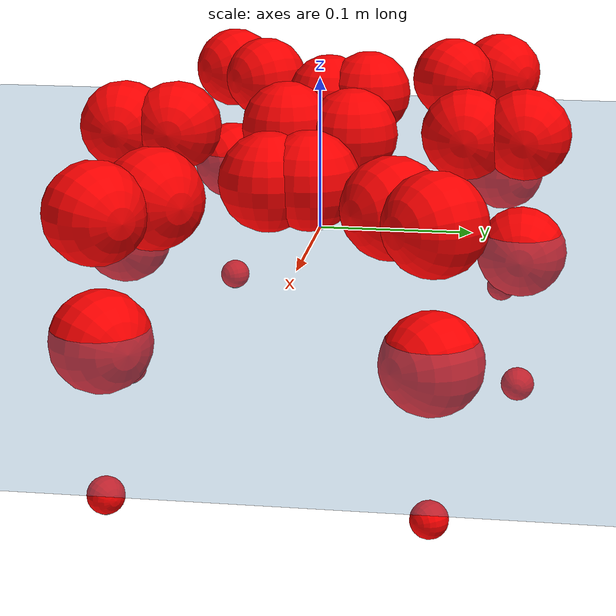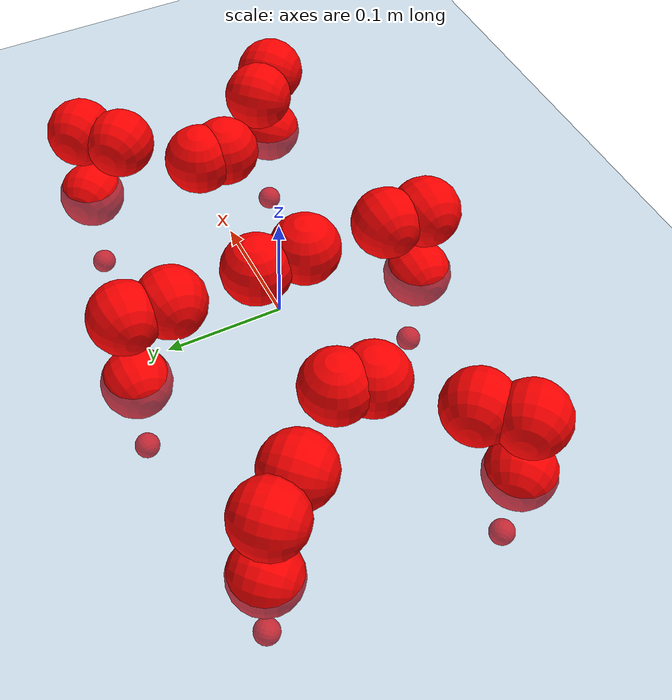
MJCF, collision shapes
<mujoco model="Golem">
  <compiler angle="radian" assetdir="assets" balanceinertia="true" inertiafromgeom="false"/>

  <option timestep="0.005" density="1.2" viscosity="2e-05"/>

  <size nkey="1"/>

  <visual>
    <quality shadowsize="8192"/>
    <map shadowclip="0.5"/>
  </visual>

  <default>
    <default class="/">
      <joint armature="0.01" damping="0.01" frictionloss="0.01"/>
      <geom contype="0" conaffinity="0" group="1" solref="-1000 -80"/>
      <site size="0.01 0.005 0.005" group="5"/>
      <general forcelimited="true" biastype="affine" gainprm="25" biasprm="0 -25 -0.5"/>
      <default class="visual">
        <geom type="mesh" group="2"/>
      </default>
      <default class="collision">
        <geom group="3"/>
      </default>
      <default class="foot">
        <geom size="0.01 0 0" condim="6" group="4" priority="1" solimp="0.015 1 0.01"/>
      </default>
      <default class="reward_collision_sphere">
        <geom group="5" rgba="1 0 0 1"/>
      </default>
    </default>
  </default>

  <asset>
    <texture type="skybox" colorspace="auto" name="//unnamed_texture_0" builtin="gradient" rgb1="0.95 0.95 0.95" rgb2="0.95 0.95 0.95" width="100" height="600"/>
    <texture type="2d" colorspace="auto" name="texplane" builtin="checker" rgb1="0.345 0.575 0.748" rgb2="0.345 0.575 0.748" markrgb="1 1 1" width="512" height="512"/>
    <material name="MatPlane" class="/" texture="texplane" texuniform="true" texrepeat="2 2" specular="0.9"/>
    <mesh name="body" class="/" file="body.stl" scale="0.001 0.001 0.001"/>
    <mesh name="coxa" class="/" file="coxa.stl" scale="0.001 0.001 0.001"/>
    <mesh name="femur" class="/" file="femur.stl" scale="0.001 0.001 0.001"/>
    <mesh name="tibia" class="/" file="tibia.stl" scale="0.001 0.001 0.001"/>
    <mesh name="tarsus" class="/" file="tarsus.stl" scale="0.001 0.001 0.001"/>
  </asset>

  <worldbody>
    <geom name="floor" class="/" size="100 100 0.125" type="plane" group="0" material="MatPlane"/>
    <light name="toplight_shadow" class="/" pos="0 0 5" dir="0.0990148 0.0990148 -0.990148" type="directional" ambient="0.04 0.04 0.04" diffuse="0.55 0.55 0.55" specular="0.12 0.12 0.12"/>
    <light name="toplight_fill" class="/" pos="0 0 5" dir="0.0990148 0.0990148 -0.990148" type="directional" castshadow="false" ambient="0.04 0.04 0.04" diffuse="0.3 0.3 0.3" specular="0.08 0.08 0.08"/>
    <body name="trunk" pos="0.0004118 -0.000355306 0.000674601" quat="1 -9.03284e-05 0.00048059 0.000147181">
      <inertial pos="0.00201934 -0.000107076 -0.00223034" quat="1 -0.000468073 -0.000410325 -0.000732773" mass="1.53124" diaginertia="0.00474201 6.22716e-05 0.00997737"/>
      <joint name="//unnamed_joint_0" type="free"/>
      <geom name="//unnamed_geom_1" class="/" pos="0 0 0.0639046" quat="1 0 0 0" type="mesh" rgba="0.9 0.9 0.9 1" mesh="body"/>
      <site name="imu" class="/" pos="0.119483 -0.0140257 0.101786" size="0.00741707"/>
      <camera name="track" class="/" pos="0 -0.73014 0" quat="0.707107 0.707107 0 0" mode="trackcom"/>
      <camera name="ego_camera" class="/" pos="0.112001 0 0.0998509" quat="-0.5 -0.5 0.5 0.5"/>
      <body name="coxa_RR" pos="-0.154067 -0.0305992 0.0598306" quat="0.382764 -0.000424171 0.000304625 -0.923846">
        <inertial pos="-0.000508567 0.000578026 0.00269223" quat="0.9999 -0.00192352 -0.00292732 -0.0137317" mass="0.0838922" diaginertia="0.00487628 6.67476e-05 0.0103183"/>
        <joint name="coxa_joint_RR" class="/" pos="0 0 0" axis="-0.000980682 -0.00388228 -0.999992" range="-3.19101 3.10142" armature="0.00752114" damping="0.00622875" frictionloss="0.00846287"/>
        <geom name="//unnamed_geom_2" class="/" type="mesh" rgba="0.2 0.2 0.2 1" mesh="coxa"/>
        <geom name="//unnamed_geom_3" class="reward_collision_sphere" size="0.0296683" pos="-0.0258463 0 0"/>
        <body name="femur_RR" pos="0.0525207 0.000600987 0.00145968" quat="0.499952 -0.499913 0.499988 0.500147">
          <inertial pos="0.000509885 4.76009e-05 -0.000412669" quat="0.999986 -0.00499599 -0.000328423 -0.00168982" mass="0.0811503" diaginertia="0.00492688 6.74427e-05 0.009805"/>
          <joint name="femur_joint_RR" class="/" pos="0 0 0" axis="0.0128624 0.002523 -0.999914" range="-3.10142 3.12468" armature="0.00657912" damping="0" frictionloss="0.00689213"/>
          <geom name="//unnamed_geom_4" class="/" type="mesh" rgba="0.9 0.9 0.9 1" mesh="femur"/>
          <geom name="//unnamed_geom_5" class="reward_collision_sphere" size="0.0296683"/>
          <body name="tibia_RR" pos="-0.00186376 -0.0381975 0.00118505" quat="-0.00133259 0.999999 0.000158829 0.000224866">
            <inertial pos="0.00265156 0.00284191 -0.000838358" quat="0.999986 0.00524383 -0.000671007 -0.000123832" mass="0.0841388" diaginertia="0.00465215 6.44474e-05 0.00963285"/>
            <joint name="tibia_joint_RR" class="/" pos="0 0 0" axis="-0.00890183 0.000782543 0.99996" stiffness="0.00429516" range="-3.10535 3.12303" armature="0.00655704" damping="0.00152224" frictionloss="0.00756614"/>
            <geom name="//unnamed_geom_6" class="/" type="mesh" rgba="0.2 0.2 0.2 1" mesh="tibia"/>
            <geom name="//unnamed_geom_7" class="reward_collision_sphere" size="0.0296683"/>
            <body name="tarsus_RR" pos="0.0736089 0.0021405 -0.00196541" quat="0.999999 -7.75582e-05 0.00096191 0.000377978">
              <inertial pos="0.0495355 0.000798971 -0.000363158" quat="0.499161 0.499509 0.499209 0.502114" mass="0.085441" diaginertia="0.00506274 6.47508e-05 0.0106332"/>
              <joint name="tarsus_joint_RR" class="/" pos="0 0 0" axis="0.0112226 0.00426299 0.999928" stiffness="0.0033316" range="-3.1899 3.14692" armature="0.00714656" damping="0.00345869" frictionloss="0.0073912"/>
              <geom name="//unnamed_geom_8" class="/" type="mesh" rgba="0.9 0.9 0.9 1" mesh="tarsus"/>
              <geom name="foot_1" class="foot" size="0.00775621" pos="0.0964929 0 0" quat="0 -0.707107 0 0.707107"/>
              <geom name="//unnamed_geom_10" class="reward_collision_sphere" size="0.0296683"/>
              <geom name="//unnamed_geom_11" class="reward_collision_sphere" size="0.0111256" pos="0.0926159 0 0"/>
              <site name="foot_1" class="foot" pos="0.0964929 0 0" quat="0 -0.707107 0 0.707107" size="0.00741707"/>
            </body>
          </body>
        </body>
      </body>
      <body name="coxa_RM" pos="-0.00257576 -0.0475146 0.0661762" quat="0.707471 -0.000841787 -1.46304e-05 -0.706742">
        <inertial pos="0.00267399 -0.00206225 0.00259091" quat="0.999986 -0.00479807 0.00221944 -0.000127826" mass="0.0782645" diaginertia="0.00458539 6.46531e-05 0.00983953"/>
        <joint name="coxa_joint_RM" class="/" pos="0 0 0" axis="-0.00381925 -0.00994213 -0.999943" range="-3.14585 3.18766" armature="0.00785179" damping="0.00529797" frictionloss="0.00638972"/>
        <geom name="//unnamed_geom_12" class="/" type="mesh" rgba="0.2 0.2 0.2 1" mesh="coxa"/>
        <geom name="//unnamed_geom_13" class="reward_collision_sphere" size="0.0296683" pos="-0.0258463 0 0"/>
        <body name="femur_RM" pos="0.0479715 -0.00136913 -0.00208627" quat="0.500003 -0.500063 0.50008 0.499855">
          <inertial pos="0.00285907 0.000557389 -0.000635227" quat="0.999995 -0.000351215 -0.000870073 0.00308849" mass="0.0869033" diaginertia="0.00481475 6.51068e-05 0.00995966"/>
          <joint name="femur_joint_RM" class="/" pos="0 0 0" axis="-0.00414001 -0.00785965 -0.999961" range="-3.19268 3.1519" armature="0.00767028" damping="0.0219915" frictionloss="0.00846352"/>
          <geom name="//unnamed_geom_14" class="/" type="mesh" rgba="0.9 0.9 0.9 1" mesh="femur"/>
          <geom name="//unnamed_geom_15" class="reward_collision_sphere" size="0.0296683"/>
          <body name="tibia_RM" pos="0.000910632 -0.0355145 -0.0016628" quat="0.0004199 1 2.89232e-05 5.20424e-05">
            <inertial pos="0.00214988 -0.00315849 -0.0021467" quat="0.999932 0.00864712 0.00242651 0.0074348" mass="0.0821153" diaginertia="0.00483424 6.36566e-05 0.010165"/>
            <joint name="tibia_joint_RM" class="/" pos="0 0 0" axis="0.000913691 0.00400167 0.999992" range="-3.14001 3.0932" armature="0.00807341" damping="0.0190819" frictionloss="0.00788674"/>
            <geom name="//unnamed_geom_16" class="/" type="mesh" rgba="0.2 0.2 0.2 1" mesh="tibia"/>
            <geom name="//unnamed_geom_17" class="reward_collision_sphere" size="0.0296683"/>
            <body name="tarsus_RM" pos="0.0774371 0.000605242 -0.00134761" quat="1 -0.000307473 0.000358052 0.000110097">
              <inertial pos="0.0548931 -0.00118327 0.000970002" quat="0.506257 0.507054 0.496237 0.490254" mass="0.0818814" diaginertia="0.00490846 6.68229e-05 0.00959106"/>
              <joint name="tarsus_joint_RM" class="/" pos="0 0 0" axis="-0.00159004 -0.000157598 0.999999" stiffness="0.00260642" range="-3.10593 3.1915" armature="0.00781665" damping="0.00999758" frictionloss="0.00707122"/>
              <geom name="//unnamed_geom_18" class="/" type="mesh" rgba="0.9 0.9 0.9 1" mesh="tarsus"/>
              <geom name="foot_2" class="foot" size="0.0079575" pos="0.0964929 0 0" quat="0 -0.707107 0 0.707107"/>
              <geom name="//unnamed_geom_20" class="reward_collision_sphere" size="0.0296683"/>
              <geom name="//unnamed_geom_21" class="reward_collision_sphere" size="0.0111256" pos="0.0926159 0 0"/>
              <site name="foot_2" class="foot" pos="0.0964929 0 0" quat="0 -0.707107 0 0.707107" size="0.00741707"/>
            </body>
          </body>
        </body>
      </body>
      <body name="coxa_RF" pos="0.151601 -0.0289227 0.0636474" quat="0.923837 7.19284e-05 -0.000185067 -0.382787">
        <inertial pos="-0.00259892 -0.000838636 0.00325033" quat="0.999904 0.00773104 0.00427801 -0.0106849" mass="0.0807942" diaginertia="0.00494384 6.54038e-05 0.00999571"/>
        <joint name="coxa_joint_RF" class="/" pos="0 0 0" axis="-0.00448601 -0.00372243 -0.999983" range="-3.18609 3.17609" armature="0.00638393" damping="0.0173426" frictionloss="0.00769816"/>
        <geom name="//unnamed_geom_22" class="/" type="mesh" rgba="0.2 0.2 0.2 1" mesh="coxa"/>
        <geom name="//unnamed_geom_23" class="reward_collision_sphere" size="0.0296683" pos="-0.0258463 0 0"/>
        <body name="femur_RF" pos="0.0517664 -0.0025096 0.00144868" quat="0.500594 -0.499211 0.500104 0.50009">
          <inertial pos="-0.000798238 -0.00281441 0.00193617" quat="0.999965 -0.00682624 0.00456253 -0.00151582" mass="0.080543" diaginertia="0.00456103 6.32956e-05 0.00984883"/>
          <joint name="femur_joint_RF" class="/" pos="0 0 0" axis="-0.00847043 0.00179658 -0.999963" range="-3.08379 3.13593" armature="0.00747354" damping="0" frictionloss="0.00668848"/>
          <geom name="//unnamed_geom_24" class="/" type="mesh" rgba="0.9 0.9 0.9 1" mesh="femur"/>
          <geom name="//unnamed_geom_25" class="reward_collision_sphere" size="0.0296683"/>
          <body name="tibia_RF" pos="0.00153509 -0.0389973 0.00269866" quat="-0.00126106 0.999999 -0.000339602 -0.000537014">
            <inertial pos="0.000823566 0.00296644 -0.00205012" quat="0.999901 -0.00345761 0.00294774 -0.0133523" mass="0.0826049" diaginertia="0.0048098 6.41177e-05 0.00974606"/>
            <joint name="tibia_joint_RF" class="/" pos="0 0 0" axis="0.00989756 -0.00375744 0.999944" stiffness="0.00650673" range="-3.147 3.13547" armature="0.00674413" damping="0.00197382" frictionloss="0.00738424"/>
            <geom name="//unnamed_geom_26" class="/" type="mesh" rgba="0.2 0.2 0.2 1" mesh="tibia"/>
            <geom name="//unnamed_geom_27" class="reward_collision_sphere" size="0.0296683"/>
            <body name="tarsus_RF" pos="0.0732111 0.000353988 -0.0025912" quat="0.999999 0.000377419 0.00019916 0.000925452">
              <inertial pos="0.0500325 0.000578504 0.00115376" quat="0.496476 0.492775 0.510975 0.499589" mass="0.0770147" diaginertia="0.0047527 6.3791e-05 0.00958246"/>
              <joint name="tarsus_joint_RF" class="/" pos="0 0 0" axis="-0.00393485 0.00786221 0.999961" range="-3.10698 3.15494" armature="0.00736838" damping="0.0119296" frictionloss="0.0084639"/>
              <geom name="//unnamed_geom_28" class="/" type="mesh" rgba="0.9 0.9 0.9 1" mesh="tarsus"/>
              <geom name="foot_3" class="foot" size="0.00774672" pos="0.0964929 0 0" quat="0 -0.707107 0 0.707107"/>
              <geom name="//unnamed_geom_30" class="reward_collision_sphere" size="0.0296683"/>
              <geom name="//unnamed_geom_31" class="reward_collision_sphere" size="0.0111256" pos="0.0926159 0 0"/>
              <site name="foot_3" class="foot" pos="0.0964929 0 0" quat="0 -0.707107 0 0.707107" size="0.00741707"/>
            </body>
          </body>
        </body>
      </body>
      <body name="coxa_LR" pos="-0.15061 0.0350138 0.0636545" quat="0.382024 0.00023338 -0.000781068 0.924152">
        <inertial pos="0.00225485 -0.00118265 -0.00268909" quat="0.999912 -0.00712286 0.0107017 -0.00317367" mass="0.0831436" diaginertia="0.00476699 6.58965e-05 0.0100877"/>
        <joint name="coxa_joint_LR" class="/" pos="0 0 0" axis="0.00200975 -0.00638052 -0.999978" range="-3.14401 3.11756" armature="0.00659504" damping="0.00514857" frictionloss="0.0074413"/>
        <geom name="//unnamed_geom_32" class="/" type="mesh" rgba="0.2 0.2 0.2 1" mesh="coxa"/>
        <geom name="//unnamed_geom_33" class="reward_collision_sphere" size="0.0296683" pos="-0.0258463 0 0"/>
        <body name="femur_LR" pos="0.0510934 -0.00313475 0.00172731" quat="0.499361 -0.499905 0.499945 0.500788">
          <inertial pos="0.00186945 0.000275932 -0.00164825" quat="1 -0.000448127 -0.00040735 0.000154511" mass="0.0830994" diaginertia="0.00480134 6.56516e-05 0.0103719"/>
          <joint name="femur_joint_LR" class="/" pos="0 0 0" axis="-0.000206106 0.00402845 0.999992" range="-3.08832 3.15796" armature="0.00794688" damping="0" frictionloss="0.00788143"/>
          <geom name="//unnamed_geom_34" class="/" type="mesh" rgba="0.9 0.9 0.9 1" mesh="femur"/>
          <geom name="//unnamed_geom_35" class="reward_collision_sphere" size="0.0296683"/>
          <body name="tibia_LR" pos="0.00021223 -0.0415618 -0.00598137" quat="0.000247846 1 -0.000146193 0.000147342">
            <inertial pos="0.00183653 -0.00346406 0.00357012" quat="0.999988 0.00315012 0.000143454 0.00364432" mass="0.0788793" diaginertia="0.00474347 6.71342e-05 0.00991739"/>
            <joint name="tibia_joint_LR" class="/" pos="0 0 0" axis="-0.000268308 -0.00466465 -0.999989" range="-3.1156 3.09512" armature="0.00680252" damping="0.0133388" frictionloss="0.00641783"/>
            <geom name="//unnamed_geom_36" class="/" type="mesh" rgba="0.2 0.2 0.2 1" mesh="tibia"/>
            <geom name="//unnamed_geom_37" class="reward_collision_sphere" size="0.0296683"/>
            <body name="tarsus_LR" pos="0.0749656 0.00484051 0.00164833" quat="1 -5.36528e-06 -9.30209e-05 0.000417108">
              <inertial pos="0.0507994 -0.00163116 -0.000146993" quat="0.500826 0.500166 0.502017 0.496977" mass="0.0824485" diaginertia="0.00477379 6.33942e-05 0.00991255"/>
              <joint name="tarsus_joint_LR" class="/" pos="0 0 0" axis="0.0065724 -0.00576138 -0.999962" range="-3.10237 3.13478" armature="0.00763787" damping="0.00757786" frictionloss="0.00721206"/>
              <geom name="//unnamed_geom_38" class="/" type="mesh" rgba="0.9 0.9 0.9 1" mesh="tarsus"/>
              <geom name="foot_4" class="foot" size="0.00682213" pos="0.0964929 0 0" quat="0.707107 0 -0.707107 0"/>
              <geom name="//unnamed_geom_40" class="reward_collision_sphere" size="0.0296683"/>
              <geom name="//unnamed_geom_41" class="reward_collision_sphere" size="0.0111256" pos="0.0926159 0 0"/>
              <site name="foot_4" class="foot" pos="0.0964929 0 0" quat="0.707107 0 -0.707107 0" size="0.00741707"/>
            </body>
          </body>
        </body>
      </body>
      <body name="coxa_LM" pos="-0.00303712 0.0471312 0.0627801" quat="0.706997 -9.94299e-05 0.000452895 0.707216">
        <inertial pos="-0.00174295 0.000178438 0.00303317" quat="0.999989 0.00170297 0.000472221 0.00425213" mass="0.080741" diaginertia="0.00487903 6.54112e-05 0.0103433"/>
        <joint name="coxa_joint_LM" class="/" pos="0 0 0" axis="-0.00422577 0.00123397 -0.99999" stiffness="0.00472349" range="-3.18962 3.13627" armature="0.00627813" damping="0.00737387" frictionloss="0.00838512"/>
        <geom name="//unnamed_geom_42" class="/" type="mesh" rgba="0.2 0.2 0.2 1" mesh="coxa"/>
        <geom name="//unnamed_geom_43" class="reward_collision_sphere" size="0.0296683" pos="-0.0258463 0 0"/>
        <body name="femur_LM" pos="0.0482364 0.00347723 0.00105262" quat="0.50039 -0.499821 0.500059 0.49973">
          <inertial pos="-0.000488461 -0.00286233 -0.000616219" quat="0.999901 -0.00195034 -0.0130867 -0.00480471" mass="0.0773601" diaginertia="0.00458518 6.32203e-05 0.00964897"/>
          <joint name="femur_joint_LM" class="/" pos="0 0 0" axis="0.0102203 0.0100442 0.999897" stiffness="0.00513182" range="-3.12652 3.15994" armature="0.00638744" damping="0.0123706" frictionloss="0.00846896"/>
          <geom name="//unnamed_geom_44" class="/" type="mesh" rgba="0.9 0.9 0.9 1" mesh="femur"/>
          <geom name="//unnamed_geom_45" class="reward_collision_sphere" size="0.0296683"/>
          <body name="tibia_LM" pos="-0.000957245 -0.0379212 -0.000164543" quat="-0.000118752 1 0.000154371 9.26954e-07">
            <inertial pos="-0.00151581 0.000788233 -0.00085529" quat="1 -0.000169255 -3.015e-05 0.000186898" mass="0.0844012" diaginertia="0.00460568 6.46007e-05 0.0098139"/>
            <joint name="tibia_joint_LM" class="/" pos="0 0 0" axis="-0.00214448 0.00352198 -0.999991" range="-3.08508 3.13671" armature="0.00729675" damping="0" frictionloss="0.00638941"/>
            <geom name="//unnamed_geom_46" class="/" type="mesh" rgba="0.2 0.2 0.2 1" mesh="tibia"/>
            <geom name="//unnamed_geom_47" class="reward_collision_sphere" size="0.0296683"/>
            <body name="tarsus_LM" pos="0.079406 -0.000621487 -0.00344012" quat="1 -0.000357536 -0.000277931 0.000428477">
              <inertial pos="0.0492915 -0.000939877 -0.00023251" quat="0.500135 0.496449 0.500588 0.502807" mass="0.0783858" diaginertia="0.00466709 6.44867e-05 0.010196"/>
              <joint name="tarsus_joint_LM" class="/" pos="0 0 0" axis="0.00971813 0.00703713 -0.999928" range="-3.11669 3.0832" armature="0.00746025" damping="0.00991116" frictionloss="0.00648168"/>
              <geom name="//unnamed_geom_48" class="/" type="mesh" rgba="0.9 0.9 0.9 1" mesh="tarsus"/>
              <geom name="foot_5" class="foot" size="0.0073486" pos="0.0964929 0 0" quat="0.707107 0 -0.707107 0"/>
              <geom name="//unnamed_geom_50" class="reward_collision_sphere" size="0.0296683"/>
              <geom name="//unnamed_geom_51" class="reward_collision_sphere" size="0.0111256" pos="0.0926159 0 0"/>
              <site name="foot_5" class="foot" pos="0.0964929 0 0" quat="0.707107 0 -0.707107 0" size="0.00741707"/>
            </body>
          </body>
        </body>
      </body>
      <body name="coxa_LF" pos="0.150264 0.0315661 0.0648265" quat="0.923936 0.000728507 -0.00105725 0.382544">
        <inertial pos="0.00104126 -0.00265507 0.00055251" quat="0.999994 0.000711566 -0.00128281 -0.0031896" mass="0.0785033" diaginertia="0.00460375 6.08475e-05 0.00954993"/>
        <joint name="coxa_joint_LF" class="/" pos="0 0 0" axis="0.00200059 0.00127065 -0.999997" range="-3.19582 3.10126" armature="0.00771053" damping="0" frictionloss="0.00840863"/>
        <geom name="//unnamed_geom_52" class="/" type="mesh" rgba="0.2 0.2 0.2 1" mesh="coxa"/>
        <geom name="//unnamed_geom_53" class="reward_collision_sphere" size="0.0296683" pos="-0.0258463 0 0"/>
        <body name="femur_LF" pos="0.0479209 0.00262119 -0.00153181" quat="0.499084 -0.499455 0.500446 0.501013">
          <inertial pos="0.000595961 -0.000770058 0.000645653" quat="0.999983 0.00062575 0.00482515 0.00306303" mass="0.0811974" diaginertia="0.0046453 6.299e-05 0.00953318"/>
          <joint name="femur_joint_LF" class="/" pos="0 0 0" axis="1.6716e-05 0.0157808 0.999875" range="-3.15818 3.08976" armature="0.00779644" damping="0.0139777" frictionloss="0.00707515"/>
          <geom name="//unnamed_geom_54" class="/" type="mesh" rgba="0.9 0.9 0.9 1" mesh="femur"/>
          <geom name="//unnamed_geom_55" class="reward_collision_sphere" size="0.0296683"/>
          <body name="tibia_LF" pos="0.000602759 -0.03859 -0.00199649" quat="6.64834e-06 1 2.69719e-05 -2.13609e-05">
            <inertial pos="0.000213776 0.000491008 -0.00088923" quat="0.999914 -0.0120852 -0.00474656 -0.0020738" mass="0.0847017" diaginertia="0.00467663 6.28443e-05 0.00961172"/>
            <joint name="tibia_joint_LF" class="/" pos="0 0 0" axis="-0.01027 0.0115302 -0.999881" stiffness="0.00833853" range="-3.16643 3.11876" armature="0.0084873" damping="0.0118372" frictionloss="0.00636615"/>
            <geom name="//unnamed_geom_56" class="/" type="mesh" rgba="0.2 0.2 0.2 1" mesh="tibia"/>
            <geom name="//unnamed_geom_57" class="reward_collision_sphere" size="0.0296683"/>
            <body name="tarsus_LF" pos="0.0782118 0.00141694 0.0020191" quat="1 7.36708e-05 -0.000211892 -3.20552e-05">
              <inertial pos="0.0499521 0.000945391 0.00140003" quat="0.500868 0.499658 0.498321 0.501147" mass="0.0794832" diaginertia="0.00470701 6.30601e-05 0.00955529"/>
              <joint name="tarsus_joint_LF" class="/" pos="0 0 0" axis="0.014258 -0.00167284 -0.999897" stiffness="0.0255022" range="-3.1382 3.19432" armature="0.00754658" damping="0.0250754" frictionloss="0.00715206"/>
              <geom name="//unnamed_geom_58" class="/" type="mesh" rgba="0.9 0.9 0.9 1" mesh="tarsus"/>
              <geom name="foot_6" class="foot" size="0.00723722" pos="0.0964929 0 0" quat="0.707107 0 -0.707107 0"/>
              <geom name="//unnamed_geom_60" class="reward_collision_sphere" size="0.0296683"/>
              <geom name="//unnamed_geom_61" class="reward_collision_sphere" size="0.0111256" pos="0.0926159 0 0"/>
              <site name="foot_6" class="foot" pos="0.0964929 0 0" quat="0.707107 0 -0.707107 0" size="0.00741707"/>
            </body>
          </body>
        </body>
      </body>
    </body>
  </worldbody>

  <contact>
    <pair class="/" geom1="floor" geom2="foot_1" name="//unnamed_contact_0"/>
    <pair class="/" geom1="floor" geom2="foot_2" name="//unnamed_contact_1"/>
    <pair class="/" geom1="floor" geom2="foot_3" name="//unnamed_contact_2"/>
    <pair class="/" geom1="floor" geom2="foot_4" name="//unnamed_contact_3"/>
    <pair class="/" geom1="floor" geom2="foot_5" name="//unnamed_contact_4"/>
    <pair class="/" geom1="floor" geom2="foot_6" name="//unnamed_contact_5"/>
  </contact>

  <actuator>
    <general name="coxa_joint_RR" class="/" joint="coxa_joint_RR" forcerange="-5.97786 5.97786" gainprm="17.7863" biasprm="0 -17.7863 -0.366135"/>
    <general name="femur_joint_RR" class="/" joint="femur_joint_RR" forcerange="-5.88458 5.88458" gainprm="17.7863" biasprm="0 -17.7863 -0.366135"/>
    <general name="tibia_joint_RR" class="/" joint="tibia_joint_RR" forcerange="-5.27662 5.27662" gainprm="17.7863" biasprm="0 -17.7863 -0.366135"/>
    <general name="tarsus_joint_RR" class="/" joint="tarsus_joint_RR" forcerange="-5.41885 5.41885" gainprm="17.7863" biasprm="0 -17.7863 -0.366135"/>
    <general name="coxa_joint_RM" class="/" joint="coxa_joint_RM" forcerange="-5.97246 5.97246" gainprm="17.7863" biasprm="0 -17.7863 -0.366135"/>
    <general name="femur_joint_RM" class="/" joint="femur_joint_RM" forcerange="-5.9117 5.9117" gainprm="17.7863" biasprm="0 -17.7863 -0.366135"/>
    <general name="tibia_joint_RM" class="/" joint="tibia_joint_RM" forcerange="-4.92597 4.92597" gainprm="17.7863" biasprm="0 -17.7863 -0.366135"/>
    <general name="tarsus_joint_RM" class="/" joint="tarsus_joint_RM" forcerange="-5.68093 5.68093" gainprm="17.7863" biasprm="0 -17.7863 -0.366135"/>
    <general name="coxa_joint_RF" class="/" joint="coxa_joint_RF" forcerange="-5.82167 5.82167" gainprm="17.7863" biasprm="0 -17.7863 -0.366135"/>
    <general name="femur_joint_RF" class="/" joint="femur_joint_RF" forcerange="-5.01345 5.01345" gainprm="17.7863" biasprm="0 -17.7863 -0.366135"/>
    <general name="tibia_joint_RF" class="/" joint="tibia_joint_RF" forcerange="-4.96316 4.96316" gainprm="17.7863" biasprm="0 -17.7863 -0.366135"/>
    <general name="tarsus_joint_RF" class="/" joint="tarsus_joint_RF" forcerange="-5.215 5.215" gainprm="17.7863" biasprm="0 -17.7863 -0.366135"/>
    <general name="coxa_joint_LR" class="/" joint="coxa_joint_LR" forcerange="-5.94284 5.94284" gainprm="17.7863" biasprm="0 -17.7863 -0.366135"/>
    <general name="femur_joint_LR" class="/" joint="femur_joint_LR" forcerange="-4.84418 4.84418" gainprm="17.7863" biasprm="0 -17.7863 -0.366135"/>
    <general name="tibia_joint_LR" class="/" joint="tibia_joint_LR" forcerange="-4.94441 4.94441" gainprm="17.7863" biasprm="0 -17.7863 -0.366135"/>
    <general name="tarsus_joint_LR" class="/" joint="tarsus_joint_LR" forcerange="-5.57054 5.57054" gainprm="17.7863" biasprm="0 -17.7863 -0.366135"/>
    <general name="coxa_joint_LM" class="/" joint="coxa_joint_LM" forcerange="-5.39069 5.39069" gainprm="17.7863" biasprm="0 -17.7863 -0.366135"/>
    <general name="femur_joint_LM" class="/" joint="femur_joint_LM" forcerange="-5.37514 5.37514" gainprm="17.7863" biasprm="0 -17.7863 -0.366135"/>
    <general name="tibia_joint_LM" class="/" joint="tibia_joint_LM" forcerange="-5.13868 5.13868" gainprm="17.7863" biasprm="0 -17.7863 -0.366135"/>
    <general name="tarsus_joint_LM" class="/" joint="tarsus_joint_LM" forcerange="-5.3992 5.3992" gainprm="17.7863" biasprm="0 -17.7863 -0.366135"/>
    <general name="coxa_joint_LF" class="/" joint="coxa_joint_LF" forcerange="-5.90447 5.90447" gainprm="17.7863" biasprm="0 -17.7863 -0.366135"/>
    <general name="femur_joint_LF" class="/" joint="femur_joint_LF" forcerange="-5.8798 5.8798" gainprm="17.7863" biasprm="0 -17.7863 -0.366135"/>
    <general name="tibia_joint_LF" class="/" joint="tibia_joint_LF" forcerange="-5.41699 5.41699" gainprm="17.7863" biasprm="0 -17.7863 -0.366135"/>
    <general name="tarsus_joint_LF" class="/" joint="tarsus_joint_LF" forcerange="-5.19973 5.19973" gainprm="17.7863" biasprm="0 -17.7863 -0.366135"/>
  </actuator>

  <sensor>
    <gyro site="imu" name="imu_angular_velocity"/>
    <velocimeter site="imu" name="imu_linear_velocity"/>
    <framelinvel objtype="site" objname="foot_1" name="foot_1_global_linear_velocity"/>
    <framelinvel objtype="site" objname="foot_2" name="foot_2_global_linear_velocity"/>
    <framelinvel objtype="site" objname="foot_3" name="foot_3_global_linear_velocity"/>
    <framelinvel objtype="site" objname="foot_4" name="foot_4_global_linear_velocity"/>
    <framelinvel objtype="site" objname="foot_5" name="foot_5_global_linear_velocity"/>
    <framelinvel objtype="site" objname="foot_6" name="foot_6_global_linear_velocity"/>
  </sensor>

  <keyframe>
    <key name="home" qpos="0 0 0.1457 1 0 0 0 0 0 0 0 0 0 0 0 0 0 0 0 0 0 0 0 0 0 0 0 0 0 0 0"/>
  </keyframe>
</mujoco>
